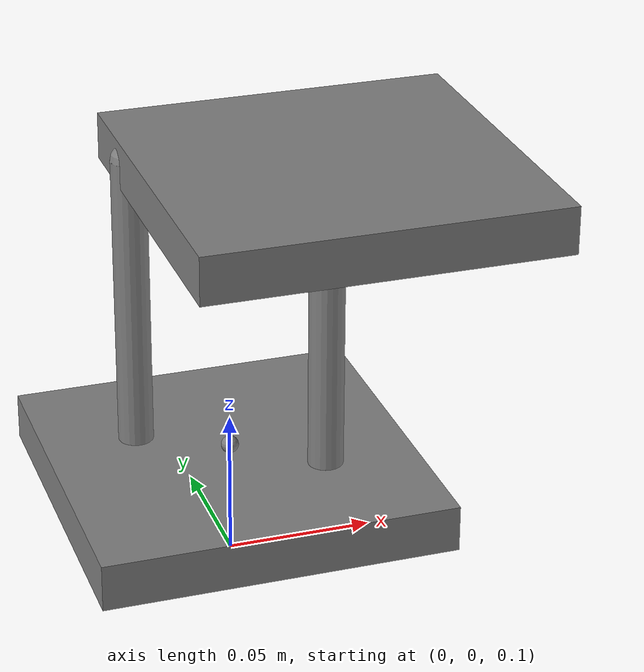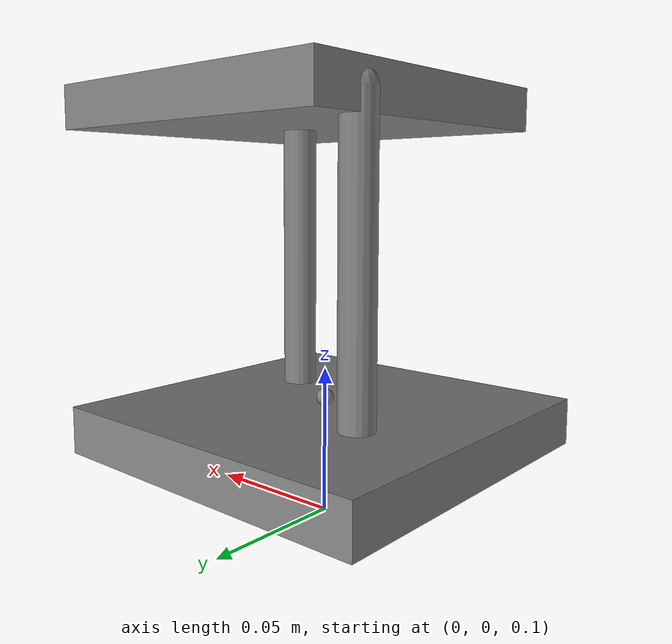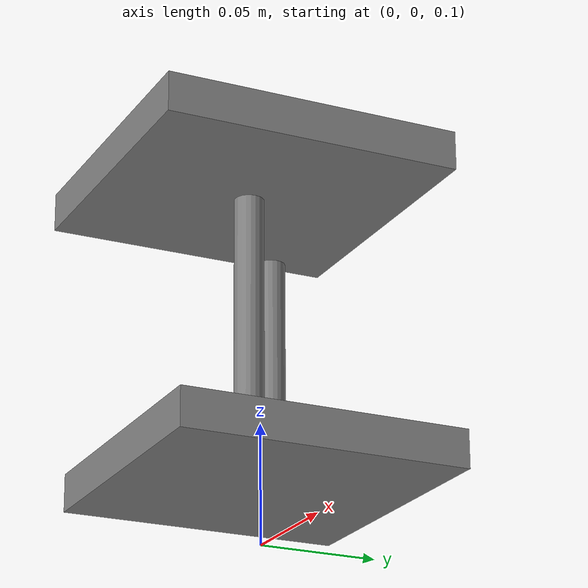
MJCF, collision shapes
<?xml version='1.0' encoding='UTF-8'?>
<mujoco model="snakebot">
  <compiler angle="radian" meshdir="assets" autolimits="true"/>
  <option timestep="0.002" gravity="0 0 -9.81" iterations="80" integrator="implicitfast"/>
  <default>
    <default class="snake">
      <joint damping="0.150000" frictionloss="0.030000" armature="0.003000"/>
      <position kp="55" dampratio="1"/>
      <default class="visual">
        <geom type="mesh" contype="0" conaffinity="0" group="2"/>
      </default>
      <default class="collision">
        <geom group="3" friction="1.2 0.03 0.01"/>
      </default>
    </default>
  </default>
  <asset>
    <mesh name="fusioncomponent__2" file="fusioncomponent__2.stl"/>
    <mesh name="danda_v4" file="danda_v4.stl"/>
    <mesh name="danda_support_v5" file="danda_support_v5.stl"/>
    <mesh name="Servo_snake_base_plate" file="Servo_snake_base_plate.stl"/>
    <mesh name="default" file="default.stl"/>
    <material name="plate_mat" rgba="0.9 0.9 0.9 1"/>
    <material name="rod_mat" rgba="0.95 0.95 0.95 1"/>
    <material name="servo_mat" rgba="0.1 0.1 0.15 1"/>
  </asset>
  <worldbody>
    <body name="plate_0" pos="0 0 0.13" childclass="snake">
      <freejoint name="snake_freejoint"/>
      <inertial mass="0.120000" pos="0 0 0" diaginertia="0.00030 0.00030 0.00030"/>
      <site name="head_imu" pos="0 0 0.01" size="0.003"/>
      <geom name="plate_0_collision" type="box" size="0.060000 0.060000 0.008000" class="collision"/>
      <geom name="plate_0_base_servo_visual" type="mesh" mesh="Servo_snake_base_plate" euler="1.5707963 0 0" class="visual"/>
      <geom name="plate_0_horn_visual" type="mesh" mesh="default" class="visual"/>
      <body name="module_0_rod_main" pos="0.028000 -0.018000 0.000000">
        <joint name="module_0_servo_a" type="hinge" axis="0 0 1" range="-1.047198 1.047198"/>
        <inertial mass="0.020000" pos="0 0 0.055000" diaginertia="0.00001 0.00001 0.00001"/>
        <geom name="module_0_rod_main_collision" type="capsule" fromto="0 0 0 0 0 0.110000" size="0.006000" class="collision"/>
        <geom name="module_0_rod_main_visual" type="mesh" mesh="danda_v4" class="visual"/>
        <geom name="module_0_rod_main_bracket_visual" type="mesh" mesh="fusioncomponent__2" class="visual"/>
        <body name="plate_1" pos="0 0 0.110000">
          <joint name="module_0_servo_b" type="hinge" axis="1 0 0" range="-1.047198 1.047198"/>
          <inertial mass="0.120000" pos="0 0 0" diaginertia="0.00030 0.00030 0.00030"/>
          <geom name="plate_1_collision" type="box" size="0.060000 0.060000 0.008000" class="collision"/>
          <geom name="plate_1_base_servo_visual" type="mesh" mesh="Servo_snake_base_plate" euler="-1.5707963 0 0" class="visual"/>
          <geom name="plate_1_horn_visual" type="mesh" mesh="default" class="visual"/>
        </body>
      </body>
      <body name="module_0_rod_support" pos="-0.028000 0.018000 0.000000">
        <joint name="module_0_support_passive" type="hinge" axis="0 0 1" range="-1.047198 1.047198"/>
        <inertial mass="0.020000" pos="0 0 0.055000" diaginertia="0.00001 0.00001 0.00001"/>
        <geom name="module_0_rod_support_collision" type="capsule" fromto="0 0 0 0 0 0.110000" size="0.006000" class="collision"/>
        <geom name="module_0_rod_support_visual" type="mesh" mesh="danda_support_v5" class="visual"/>
        <geom name="module_0_rod_support_bracket_visual" type="mesh" mesh="fusioncomponent__2" class="visual"/>
      </body>
    </body>
  </worldbody>
  <equality>
    <connect name="module_0_loop_connect" body1="module_0_rod_support" body2="plate_1" anchor="-0.028000 0.018000 0.110000" solref="0.005 1" solimp="0.95 0.99 0.001"/>
  </equality>
  <actuator>
    <position name="module_0_servo_a_act" joint="module_0_servo_a" class="snake"/>
    <position name="module_0_servo_b_act" joint="module_0_servo_b" class="snake"/>
  </actuator>
  <sensor>
    <accelerometer name="head_acc" site="head_imu"/>
    <gyro name="head_gyro" site="head_imu"/>
    <jointpos name="module_0_servo_a_pos" joint="module_0_servo_a"/>
    <jointvel name="module_0_servo_a_vel" joint="module_0_servo_a"/>
    <jointpos name="module_0_servo_b_pos" joint="module_0_servo_b"/>
    <jointvel name="module_0_servo_b_vel" joint="module_0_servo_b"/>
  </sensor>
</mujoco>
